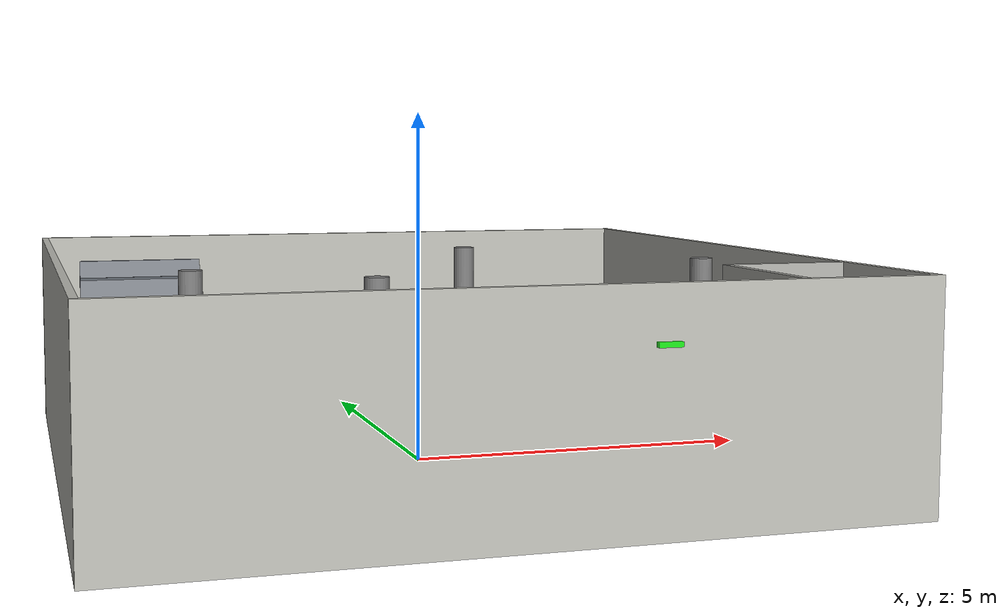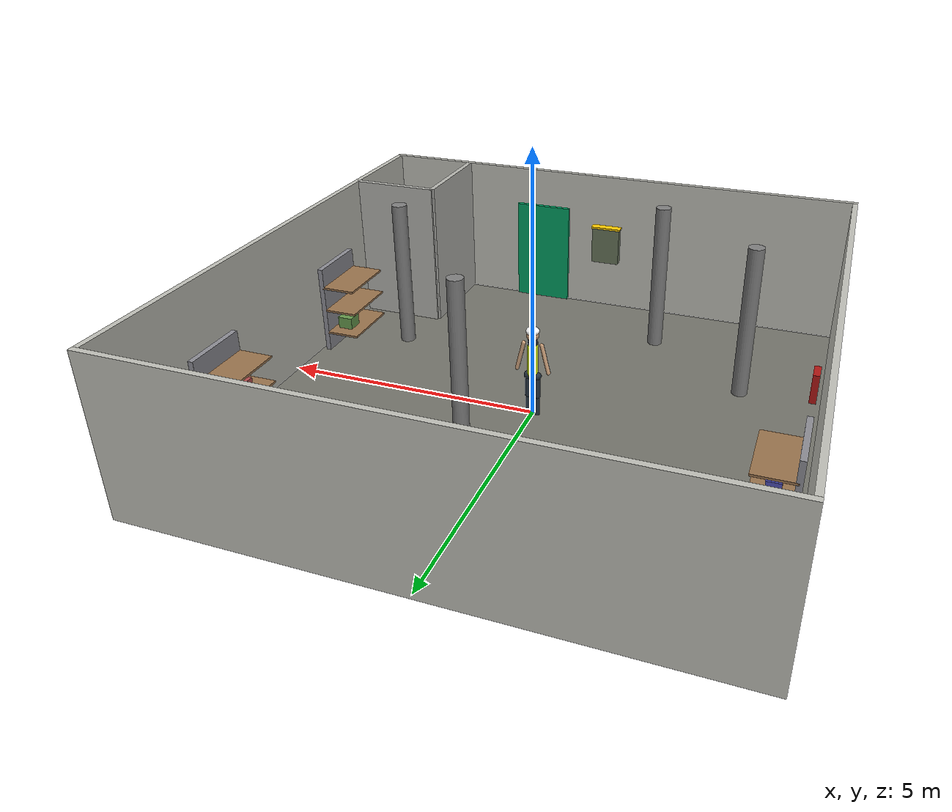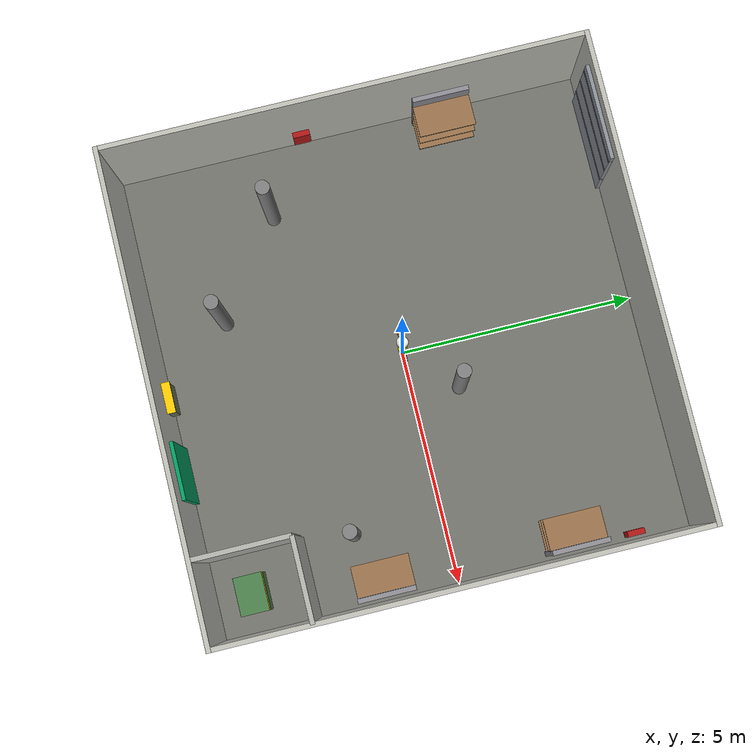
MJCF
<mujoco model="ppe_dataset_world">

    <compiler angle="radian"/>
    <option timestep="0.005"/>

    <worldbody>

        <camera
            name="dataset_camera"
            pos="0 -8 2.5"
            quat="0.5 0.5 -0.5 -0.5"
            fovy="58"/>

        <geom name="floor" type="plane" size="5 5 0.1" rgba="0.45 0.45 0.42 1" friction="1.0 0.005 0.0001"/>
        <light directional="true" diffuse=".8 .8 .8" specular=".3 .3 .3" pos="0 0 5" dir="0 0 -1"/>
        <!-- 보조 조명 -->
        <light directional="false" diffuse=".4 .4 .4" specular=".1 .1 .1" pos="3 3 3.5" dir="-0.3 -0.3 -1"/>
        <light directional="false" diffuse=".4 .4 .4" specular=".1 .1 .1" pos="-3 -3 3.5" dir="0.3 0.3 -1"/>

        <!-- 벽면 -->
        <geom name="wall_north" type="box" size="5.1 0.05 1.5" pos="0 5.05 1.5" rgba="0.75 0.75 0.72 1"/>
        <geom name="wall_south" type="box" size="5.1 0.05 1.5" pos="0 -5.05 1.5" rgba="0.75 0.75 0.72 1"/>
        <geom name="wall_east" type="box" size="0.05 5.0 1.5" pos="5.05 0 1.5" rgba="0.75 0.75 0.72 1"/>
        <geom name="wall_west" type="box" size="0.05 5.0 1.5" pos="-5.05 0 1.5" rgba="0.75 0.75 0.72 1"/>

        <!-- 기둥 -->
        <body name="column_1" pos="-1.5 -3.5 0">
            <geom name="column_1_geom" type="cylinder" size="0.15 1.5" pos="0 0 1.5" rgba="0.5 0.5 0.5 1" mass="80.0"/>
        </body>
        <body name="column_2" pos="1 1 0">
            <geom name="column_2_geom" type="cylinder" size="0.15 1.5" pos="0 0 1.5" rgba="0.5 0.5 0.5 1" mass="80.0"/>
        </body>
        <body name="column_3" pos="3.5 -1.9 0">
            <geom name="column_3_geom" type="cylinder" size="0.15 1.5" pos="0 0 1.5" rgba="0.5 0.5 0.5 1" mass="80.0"/>
        </body>
        <body name="column_4" pos="-3.5 -2 0">
            <geom name="column_4_geom" type="cylinder" size="0.15 1.5" pos="0 0 1.5" rgba="0.5 0.5 0.5 1" mass="80.0"/>
        </body>

        <!-- 서쪽 벽면 선반 -->
        <body name="wall_shelf_west" pos="-4.85 2.0 0">
            <geom name="shelf_west_back" type="box" size="0.05 0.6 0.9" pos="0 0 0.9" rgba="0.55 0.55 0.58 1" mass="8.0"/>
            <geom name="shelf_west_tier1" type="box" size="0.35 0.6 0.02" pos="0.35 0 0.4" rgba="0.6 0.45 0.3 1" mass="5.0"/>
            <geom name="shelf_west_tier2" type="box" size="0.35 0.6 0.02" pos="0.35 0 0.9" rgba="0.6 0.45 0.3 1" mass="5.0"/>
            <geom name="shelf_west_tier3" type="box" size="0.35 0.6 0.02" pos="0.35 0 1.4" rgba="0.6 0.45 0.3 1" mass="5.0"/>
            <geom name="shelf_west_item1" type="box" size="0.15 0.15 0.12" pos="0.3 -0.2 0.54" rgba="0.7 0.5 0.2 1" mass="3.0"/>
            <geom name="shelf_west_item2" type="box" size="0.12 0.12 0.1" pos="0.35 0.15 1.02" rgba="0.3 0.3 0.7 1" mass="2.0"/>
        </body>

        <!-- 동쪽 벽면 선반 1 -->
        <body name="wall_shelf_east_1" pos="4.85 -1.5 0">
            <geom name="shelf_east1_back" type="box" size="0.05 0.6 0.9" pos="0 0 0.9" rgba="0.55 0.55 0.58 1" mass="8.0"/>
            <geom name="shelf_east1_tier1" type="box" size="0.35 0.6 0.02" pos="-0.35 0 0.4" rgba="0.6 0.45 0.3 1" mass="5.0"/>
            <geom name="shelf_east1_tier2" type="box" size="0.35 0.6 0.02" pos="-0.35 0 0.9" rgba="0.6 0.45 0.3 1" mass="5.0"/>
            <geom name="shelf_east1_tier3" type="box" size="0.35 0.6 0.02" pos="-0.35 0 1.4" rgba="0.6 0.45 0.3 1" mass="5.0"/>
            <geom name="shelf_east1_item1" type="box" size="0.15 0.15 0.12" pos="-0.3 0.2 0.54" rgba="0.4 0.6 0.3 1" mass="3.0"/>
        </body>

        <!-- 동쪽 벽면 선반 2 -->
        <body name="wall_shelf_east_2" pos="4.85 2.5 0">
            <geom name="shelf_east2_back" type="box" size="0.05 0.6 0.9" pos="0 0 0.9" rgba="0.55 0.55 0.58 1" mass="8.0"/>
            <geom name="shelf_east2_tier1" type="box" size="0.35 0.6 0.02" pos="-0.35 0 0.4" rgba="0.6 0.45 0.3 1" mass="5.0"/>
            <geom name="shelf_east2_tier2" type="box" size="0.35 0.6 0.02" pos="-0.35 0 0.9" rgba="0.6 0.45 0.3 1" mass="5.0"/>
            <geom name="shelf_east2_tier3" type="box" size="0.35 0.6 0.02" pos="-0.35 0 1.4" rgba="0.6 0.45 0.3 1" mass="5.0"/>
            <geom name="shelf_east2_item1" type="box" size="0.12 0.12 0.1" pos="-0.35 -0.15 1.02" rgba="0.7 0.3 0.3 1" mass="2.0"/>
        </body>

        <!-- 벽면 전기 배전반 & 소화기함 (기본 인프라) -->
        <body name="electrical_panel" pos="0 -4.85 0">
            <geom name="panel_box" type="box" size="0.3 0.08 0.4" pos="0 0 1.5" rgba="0.4 0.45 0.35 1" mass="15.0"/>
            <geom name="panel_warning_stripe" type="box" size="0.32 0.09 0.02" pos="0 0 1.9" rgba="1 0.8 0 1" contype="0" conaffinity="0"/>
        </body>

        <body name="fire_extinguisher_1" pos="4.85 3.7 0">
            <geom name="extinguisher_cabinet_1" type="box" size="0.06 0.18 0.28" pos="0 0 1.0" rgba="0.69 0.09 0.08 1" mass="5.0"/>
        </body>
        <body name="fire_extinguisher_2" pos="-4.85 -1.0 0">
            <geom name="extinguisher_cabinet_2" type="box" size="0.06 0.18 0.28" pos="0 0 1.0" rgba="0.69 0.09 0.08 1" mass="5.0"/>
        </body>

        <!-- 북쪽 벽 하역장 셔터도어 -->
        <body name="loading_dock_door" pos="-3.5 5.0 0">
            <geom name="shutter_door" type="box" size="1.0 0.08 1.3" pos="0 0 1.3" rgba="0.55 0.57 0.6 1"/>
            <geom name="shutter_line_1" type="box" size="1.0 0.09 0.02" pos="0 0 0.8" rgba="0.35 0.37 0.4 1" contype="0" conaffinity="0"/>
            <geom name="shutter_line_2" type="box" size="1.0 0.09 0.02" pos="0 0 1.6" rgba="0.35 0.37 0.4 1" contype="0" conaffinity="0"/>
            <geom name="shutter_line_3" type="box" size="1.0 0.09 0.02" pos="0 0 2.3" rgba="0.35 0.37 0.4 1" contype="0" conaffinity="0"/>
        </body>

        <!-- 남쪽 벽 비상구 -->
        <body name="emergency_exit" pos="1.5 -5.0 0">
            <geom name="exit_door" type="box" size="0.6 0.08 1.1" pos="0 0 1.1" rgba="0.0 0.62 0.38 1"/>
            <site name="exit_sign" pos="0 -0.1 2.3" size="0.15 0.08 0.03" type="box" rgba="0 1 0 0.8"/>
        </body>

        <!-- 돌출 격벽 - 전기/설비실 (기본 인프라) -->
        <body name="utility_room_wall_1" pos="3.3 -4.0 0">
            <geom name="utility_wall_1_geom" type="box" size="0.05 1.0 1.5" pos="0 0 1.5" rgba="0.7 0.7 0.68 1"/>
        </body>
        <body name="utility_room_wall_2" pos="4.175 -3.0 0">
            <geom name="utility_wall_2_geom" type="box" size="0.875 0.05 1.5" pos="0 0 1.5" rgba="0.7 0.7 0.68 1"/>
        </body>
        <!-- 격벽 내부 변압기/설비 박스 -->
        <body name="utility_equipment" pos="4.2 -4.2 0">
            <geom name="transformer_box" type="box" size="0.4 0.3 0.5" pos="0 0 0.5" rgba="0.3 0.5 0.3 1" mass="150.0"/>
            <!-- 고전압 경고 표시 -->
            <geom name="transformer_warning" type="box" size="0.4 0.31 0.05" pos="0 0 0.85" rgba="1 0.8 0 1" contype="0" conaffinity="0"/>
        </body>

        <!-- Worker 0 -->
        <body name="worker_0" pos="0 0 0">
            <!-- 머리 (head) -->
            <geom name="w0_head" type="sphere" size="0.115" pos="0 0 1.62" rgba="0.82 0.65 0.50 1" mass="5.0"/>
            <!-- PPE: 안전모 (하드햇, 머리 상단에 씌움) -->
            <geom name="w0_helmet" type="ellipsoid" size="0.125 0.125 0.075" pos="0 0 1.70" rgba="1.0 1.0 1.0 1" mass="0.5"/>
            <!-- 몸통 (torso: 골반~어깨) -->
            <geom name="w0_torso" type="capsule" fromto="0 0 0.82 0 0 1.48" size="0.092" rgba="0.15 0.20 0.25 1" mass="30.0"/>
            <!-- PPE: 안전조끼 (torso 위에 약간 크게 씌움) -->
            <geom name="w0_vest" type="capsule" fromto="0 0 0.84 0 0 1.40" size="0.100" rgba="0.85 0.95 0.10 0.90" mass="0.1" contype="0" conaffinity="0"/>
            <!-- 골반 (pelvis) -->
            <geom name="w0_pelvis" type="capsule" fromto="-0.09 0 0.80 0.09 0 0.80" size="0.075" rgba="0.15 0.20 0.25 1" mass="8.0"/>
            <!-- 왼쪽 대퇴 (left upper leg) -->
            <geom name="w0_luleg" type="capsule" fromto="-0.09 0 0.80 -0.09 0 0.38" size="0.055" rgba="0.15 0.20 0.25 1" mass="8.0"/>
            <!-- 왼쪽 하퇴 (left lower leg) -->
            <geom name="w0_llleg" type="capsule" fromto="-0.09 0 0.38 -0.09 0 0.00" size="0.045" rgba="0.15 0.20 0.25 1" mass="4.0"/>
            <!-- 오른쪽 대퇴 (right upper leg) -->
            <geom name="w0_ruleg" type="capsule" fromto="0.09 0 0.80 0.09 0 0.38" size="0.055" rgba="0.15 0.20 0.25 1" mass="8.0"/>
            <!-- 오른쪽 하퇴 (right lower leg) -->
            <geom name="w0_rlleg" type="capsule" fromto="0.09 0 0.38 0.09 0 0.00" size="0.045" rgba="0.15 0.20 0.25 1" mass="4.0"/>
            <!-- 왼팔 (left arm: 어깨~손목, 약간 내린 자세) -->
            <geom name="w0_larm" type="capsule" fromto="-0.17 0 1.44 -0.30 0 0.90" size="0.037" rgba="0.82 0.65 0.50 1" mass="4.0"/>
            <!-- 오른팔 (right arm: 어깨~손목) -->
            <geom name="w0_rarm" type="capsule" fromto="0.17 0 1.44 0.30 0 0.90" size="0.037" rgba="0.82 0.65 0.50 1" mass="4.0"/>
        </body>

        <!-- Worker 1 -->
        <body name="worker_1" pos="0 0 0">
            <!-- 머리 (head) -->
            <geom name="w1_head" type="sphere" size="0.115" pos="0 0 1.62" rgba="0.82 0.65 0.50 1" mass="5.0"/>
            <!-- PPE: 안전모 -->
            <geom name="w1_helmet" type="ellipsoid" size="0.125 0.125 0.075" pos="0 0 1.70" rgba="1.0 1.0 1.0 1" mass="0.5"/>
            <!-- 몸통 -->
            <geom name="w1_torso" type="capsule" fromto="0 0 0.82 0 0 1.48" size="0.092" rgba="0.20 0.25 0.30 1" mass="30.0"/>
            <!-- PPE: 안전조끼 -->
            <geom name="w1_vest" type="capsule" fromto="0 0 0.84 0 0 1.40" size="0.100" rgba="0.85 0.95 0.10 0.90" mass="0.1" contype="0" conaffinity="0"/>
            <!-- 골반 -->
            <geom name="w1_pelvis" type="capsule" fromto="-0.09 0 0.80 0.09 0 0.80" size="0.075" rgba="0.20 0.25 0.30 1" mass="8.0"/>
            <!-- 왼쪽 대퇴 -->
            <geom name="w1_luleg" type="capsule" fromto="-0.09 0 0.80 -0.09 0 0.38" size="0.055" rgba="0.20 0.25 0.30 1" mass="8.0"/>
            <!-- 왼쪽 하퇴 -->
            <geom name="w1_llleg" type="capsule" fromto="-0.09 0 0.38 -0.09 0 0.00" size="0.045" rgba="0.20 0.25 0.30 1" mass="4.0"/>
            <!-- 오른쪽 대퇴 -->
            <geom name="w1_ruleg" type="capsule" fromto="0.09 0 0.80 0.09 0 0.38" size="0.055" rgba="0.20 0.25 0.30 1" mass="8.0"/>
            <!-- 오른쪽 하퇴 -->
            <geom name="w1_rlleg" type="capsule" fromto="0.09 0 0.38 0.09 0 0.00" size="0.045" rgba="0.20 0.25 0.30 1" mass="4.0"/>
            <!-- 왼팔 -->
            <geom name="w1_larm" type="capsule" fromto="-0.17 0 1.44 -0.30 0 0.90" size="0.037" rgba="0.82 0.65 0.50 1" mass="4.0"/>
            <!-- 오른팔 -->
            <geom name="w1_rarm" type="capsule" fromto="0.17 0 1.44 0.30 0 0.90" size="0.037" rgba="0.82 0.65 0.50 1" mass="4.0"/>
        </body>

        <!-- Worker 2 -->
        <body name="worker_2" pos="0 0 0">
            <!-- 머리 (head) -->
            <geom name="w2_head" type="sphere" size="0.115" pos="0 0 1.62" rgba="0.82 0.65 0.50 1" mass="5.0"/>
            <!-- PPE: 안전모 -->
            <geom name="w2_helmet" type="ellipsoid" size="0.125 0.125 0.075" pos="0 0 1.70" rgba="1.0 1.0 1.0 1" mass="0.5"/>
            <!-- 몸통 -->
            <geom name="w2_torso" type="capsule" fromto="0 0 0.82 0 0 1.48" size="0.092" rgba="0.15 0.18 0.22 1" mass="30.0"/>
            <!-- PPE: 안전조끼 -->
            <geom name="w2_vest" type="capsule" fromto="0.0 0 0.84 0 0 1.40" size="0.100" rgba="0.85 0.95 0.10 0.90" mass="0.1" contype="0" conaffinity="0"/>
            <!-- 골반 -->
            <geom name="w2_pelvis" type="capsule" fromto="-0.09 0 0.80 0.09 0 0.80" size="0.075" rgba="0.15 0.18 0.22 1" mass="8.0"/>
            <!-- 왼쪽 대퇴 -->
            <geom name="w2_luleg" type="capsule" fromto="-0.09 0 0.80 -0.09 0 0.38" size="0.055" rgba="0.15 0.18 0.22 1" mass="8.0"/>
            <!-- 왼쪽 하퇴 -->
            <geom name="w2_llleg" type="capsule" fromto="-0.09 0 0.38 -0.09 0 0.00" size="0.045" rgba="0.15 0.18 0.22 1" mass="4.0"/>
            <!-- 오른쪽 대퇴 -->
            <geom name="w2_ruleg" type="capsule" fromto="0.09 0 0.80 0.09 0 0.38" size="0.055" rgba="0.15 0.18 0.22 1" mass="8.0"/>
            <!-- 오른쪽 하퇴 -->
            <geom name="w2_rlleg" type="capsule" fromto="0.09 0 0.38 0.09 0 0.00" size="0.045" rgba="0.15 0.18 0.22 1" mass="4.0"/>
            <!-- 왼팔 -->
            <geom name="w2_larm" type="capsule" fromto="-0.17 0 1.44 -0.30 0 0.90" size="0.037" rgba="0.82 0.65 0.50 1" mass="4.0"/>
            <!-- 오른팔 -->
            <geom name="w2_rarm" type="capsule" fromto="0.17 0 1.44 0.30 0 0.90" size="0.037" rgba="0.82 0.65 0.50 1" mass="4.0"/>
        </body>

        <!-- Worker 3 -->
        <body name="worker_3" pos="0 0 0">
            <!-- 머리 (head) -->
            <geom name="w3_head" type="sphere" size="0.115" pos="0 0 1.62" rgba="0.82 0.65 0.50 1" mass="5.0"/>
            <!-- PPE: 안전모 -->
            <geom name="w3_helmet" type="ellipsoid" size="0.125 0.125 0.075" pos="0 0 1.70" rgba="1.0 1.0 1.0 1" mass="0.5"/>
            <!-- 몸통 -->
            <geom name="w3_torso" type="capsule" fromto="0 0 0.82 0 0 1.48" size="0.092" rgba="0.25 0.28 0.32 1" mass="30.0"/>
            <!-- PPE: 안전조끼 -->
            <geom name="w3_vest" type="capsule" fromto="0 0 0.84 0 0 1.40" size="0.100" rgba="0.85 0.95 0.10 0.90" mass="0.1" contype="0" conaffinity="0"/>
            <!-- 골반 -->
            <geom name="w3_pelvis" type="capsule" fromto="-0.09 0 0.80 0.09 0 0.80" size="0.075" rgba="0.25 0.28 0.32 1" mass="8.0"/>
            <!-- 왼쪽 대퇴 -->
            <geom name="w3_luleg" type="capsule" fromto="-0.09 0 0.80 -0.09 0 0.38" size="0.055" rgba="0.25 0.28 0.32 1" mass="8.0"/>
            <!-- 왼쪽 하퇴 -->
            <geom name="w3_llleg" type="capsule" fromto="-0.09 0 0.38 -0.09 0 0.00" size="0.045" rgba="0.25 0.28 0.32 1" mass="4.0"/>
            <!-- 오른쪽 대퇴 -->
            <geom name="w3_ruleg" type="capsule" fromto="0.09 0 0.80 0.09 0 0.38" size="0.055" rgba="0.25 0.28 0.32 1" mass="8.0"/>
            <!-- 오른쪽 하퇴 -->
            <geom name="w3_rlleg" type="capsule" fromto="0.09 0 0.38 0.09 0 0.00" size="0.045" rgba="0.25 0.28 0.32 1" mass="4.0"/>
            <!-- 왼팔 -->
            <geom name="w3_larm" type="capsule" fromto="-0.17 0 1.44 -0.30 0 0.90" size="0.037" rgba="0.82 0.65 0.50 1" mass="4.0"/>
            <!-- 오른팔 -->
            <geom name="w3_rarm" type="capsule" fromto="0.17 0 1.44 0.30 0 0.90" size="0.037" rgba="0.82 0.65 0.50 1" mass="4.0"/>
        </body>

        <!-- Worker 4 -->
        <body name="worker_4" pos="0 0 0">
            <!-- 머리 (head) -->
            <geom name="w4_head" type="sphere" size="0.115" pos="0 0 1.62" rgba="0.82 0.65 0.50 1" mass="5.0"/>
            <!-- PPE: 안전모 -->
            <geom name="w4_helmet" type="ellipsoid" size="0.125 0.125 0.075" pos="0 0 1.70" rgba="1.0 1.0 1.0 1" mass="0.5"/>
            <!-- 몸통 -->
            <geom name="w4_torso" type="capsule" fromto="0 0 0.82 0 0 1.48" size="0.092" rgba="0.18 0.20 0.25 1" mass="30.0"/>
            <!-- PPE: 안전조끼 -->
            <geom name="w4_vest" type="capsule" fromto="0 0 0.84 0 0 1.40" size="0.100" rgba="0.85 0.95 0.10 0.90" mass="0.1" contype="0" conaffinity="0"/>
            <!-- 골반 -->
            <geom name="w4_pelvis" type="capsule" fromto="-0.09 0 0.80 0.09 0 0.80" size="0.075" rgba="0.18 0.20 0.25 1" mass="8.0"/>
            <!-- 왼쪽 대퇴 -->
            <geom name="w4_luleg" type="capsule" fromto="-0.09 0 0.80 -0.09 0 0.38" size="0.055" rgba="0.18 0.20 0.25 1" mass="8.0"/>
            <!-- 왼쪽 하퇴 -->
            <geom name="w4_llleg" type="capsule" fromto="-0.09 0 0.38 -0.09 0 0.00" size="0.045" rgba="0.18 0.20 0.25 1" mass="4.0"/>
            <!-- 오른쪽 대퇴 -->
            <geom name="w4_ruleg" type="capsule" fromto="0.09 0 0.80 0.09 0 0.38" size="0.055" rgba="0.18 0.20 0.25 1" mass="8.0"/>
            <!-- 오른쪽 하퇴 -->
            <geom name="w4_rlleg" type="capsule" fromto="0.09 0 0.38 0.09 0 0.00" size="0.045" rgba="0.18 0.20 0.25 1" mass="4.0"/>
            <!-- 왼팔 -->
            <geom name="w4_larm" type="capsule" fromto="-0.17 0 1.44 -0.30 0 0.90" size="0.037" rgba="0.82 0.65 0.50 1" mass="4.0"/>
            <!-- 오른팔 -->
            <geom name="w4_rarm" type="capsule" fromto="0.17 0 1.44 0.30 0 0.90" size="0.037" rgba="0.82 0.65 0.50 1" mass="4.0"/>
        </body>
    </worldbody>
</mujoco>
